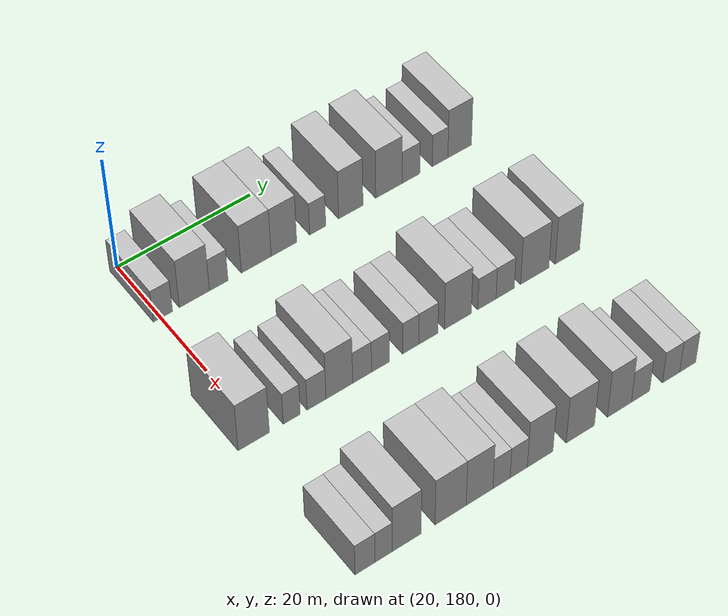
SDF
<sdf version="1.6">
 <world name="default">
  <model name="building_146">
   <static>1</static>
   <pose>25.0000 180.2762 0 0.000000 0.000000 0.000000</pose>
   <link name="link">
    <pose>0 0 3.00 0 0 0</pose>
    <collision name="collision"><geometry><box><size>10.0000 2.7897 6.0000</size></box></geometry></collision>
    <visual name="visual">
     <cast_shadows>0</cast_shadows>
     <geometry><box><size>10.0000 2.7897 6.0000</size></box></geometry>
     <material>
      <script>
       <uri>model://HANNAS_wall/materials/scripts</uri>
       <uri>model://HANNAS_wall/materials/textures</uri>
       <name>vrc/HANNAS_wall</name>
      </script>
     </material>
    </visual>
   </link>
  </model>
  <model name="building_147">
   <static>1</static>
   <pose>25.0000 184.8887 0 0.000000 0.000000 0.000000</pose>
   <link name="link">
    <pose>0 0 4.50 0 0 0</pose>
    <collision name="collision"><geometry><box><size>10.0000 4.4352 9.0000</size></box></geometry></collision>
    <visual name="visual">
     <cast_shadows>0</cast_shadows>
     <geometry><box><size>10.0000 4.4352 9.0000</size></box></geometry>
     <material>
      <script>
       <uri>model://HANNAS_wall/materials/scripts</uri>
       <uri>model://HANNAS_wall/materials/textures</uri>
       <name>vrc/HANNAS_wall</name>
      </script>
     </material>
    </visual>
   </link>
  </model>
  <model name="building_148">
   <static>1</static>
   <pose>25.0000 188.4868 0 0.000000 0.000000 0.000000</pose>
   <link name="link">
    <pose>0 0 3.00 0 0 0</pose>
    <collision name="collision"><geometry><box><size>10.0000 2.7611 6.0000</size></box></geometry></collision>
    <visual name="visual">
     <cast_shadows>0</cast_shadows>
     <geometry><box><size>10.0000 2.7611 6.0000</size></box></geometry>
     <material>
      <script>
       <uri>model://HANNAS_wall/materials/scripts</uri>
       <uri>model://HANNAS_wall/materials/textures</uri>
       <name>vrc/HANNAS_wall</name>
      </script>
     </material>
    </visual>
   </link>
  </model>
  <model name="building_149">
   <static>1</static>
   <pose>25.0000 194.1086 0 0.000000 0.000000 0.000000</pose>
   <link name="link">
    <pose>0 0 4.50 0 0 0</pose>
    <collision name="collision"><geometry><box><size>10.0000 4.4825 9.0000</size></box></geometry></collision>
    <visual name="visual">
     <cast_shadows>0</cast_shadows>
     <geometry><box><size>10.0000 4.4825 9.0000</size></box></geometry>
     <material>
      <script>
       <uri>model://HANNAS_wall/materials/scripts</uri>
       <uri>model://HANNAS_wall/materials/textures</uri>
       <name>vrc/HANNAS_wall</name>
      </script>
     </material>
    </visual>
   </link>
  </model>
  <model name="building_150">
   <static>1</static>
   <pose>25.0000 198.2959 0 0.000000 0.000000 0.000000</pose>
   <link name="link">
    <pose>0 0 4.50 0 0 0</pose>
    <collision name="collision"><geometry><box><size>10.0000 3.8920 9.0000</size></box></geometry></collision>
    <visual name="visual">
     <cast_shadows>0</cast_shadows>
     <geometry><box><size>10.0000 3.8920 9.0000</size></box></geometry>
     <material>
      <script>
       <uri>model://HANNAS_wall/materials/scripts</uri>
       <uri>model://HANNAS_wall/materials/textures</uri>
       <name>vrc/HANNAS_wall</name>
      </script>
     </material>
    </visual>
   </link>
  </model>
  <model name="building_151">
   <static>1</static>
   <pose>25.0000 203.4770 0 0.000000 0.000000 0.000000</pose>
   <link name="link">
    <pose>0 0 3.00 0 0 0</pose>
    <collision name="collision"><geometry><box><size>10.0000 2.4702 6.0000</size></box></geometry></collision>
    <visual name="visual">
     <cast_shadows>0</cast_shadows>
     <geometry><box><size>10.0000 2.4702 6.0000</size></box></geometry>
     <material>
      <script>
       <uri>model://HANNAS_wall/materials/scripts</uri>
       <uri>model://HANNAS_wall/materials/textures</uri>
       <name>vrc/HANNAS_wall</name>
      </script>
     </material>
    </visual>
   </link>
  </model>
  <model name="building_152">
   <static>1</static>
   <pose>25.0000 208.6117 0 0.000000 0.000000 0.000000</pose>
   <link name="link">
    <pose>0 0 4.50 0 0 0</pose>
    <collision name="collision"><geometry><box><size>10.0000 3.7992 9.0000</size></box></geometry></collision>
    <visual name="visual">
     <cast_shadows>0</cast_shadows>
     <geometry><box><size>10.0000 3.7992 9.0000</size></box></geometry>
     <material>
      <script>
       <uri>model://HANNAS_wall/materials/scripts</uri>
       <uri>model://HANNAS_wall/materials/textures</uri>
       <name>vrc/HANNAS_wall</name>
      </script>
     </material>
    </visual>
   </link>
  </model>
  <model name="building_153">
   <static>1</static>
   <pose>25.0000 214.5991 0 0.000000 0.000000 0.000000</pose>
   <link name="link">
    <pose>0 0 4.50 0 0 0</pose>
    <collision name="collision"><geometry><box><size>10.0000 4.1758 9.0000</size></box></geometry></collision>
    <visual name="visual">
     <cast_shadows>0</cast_shadows>
     <geometry><box><size>10.0000 4.1758 9.0000</size></box></geometry>
     <material>
      <script>
       <uri>model://HANNAS_wall/materials/scripts</uri>
       <uri>model://HANNAS_wall/materials/textures</uri>
       <name>vrc/HANNAS_wall</name>
      </script>
     </material>
    </visual>
   </link>
  </model>
  <model name="building_154">
   <static>1</static>
   <pose>25.0000 218.0930 0 0.000000 0.000000 0.000000</pose>
   <link name="link">
    <pose>0 0 3.00 0 0 0</pose>
    <collision name="collision"><geometry><box><size>10.0000 2.8120 6.0000</size></box></geometry></collision>
    <visual name="visual">
     <cast_shadows>0</cast_shadows>
     <geometry><box><size>10.0000 2.8120 6.0000</size></box></geometry>
     <material>
      <script>
       <uri>model://HANNAS_wall/materials/scripts</uri>
       <uri>model://HANNAS_wall/materials/textures</uri>
       <name>vrc/HANNAS_wall</name>
      </script>
     </material>
    </visual>
   </link>
  </model>
  <model name="building_155">
   <static>1</static>
   <pose>25.0000 222.7590 0 0.000000 0.000000 0.000000</pose>
   <link name="link">
    <pose>0 0 3.00 0 0 0</pose>
    <collision name="collision"><geometry><box><size>10.0000 2.5200 6.0000</size></box></geometry></collision>
    <visual name="visual">
     <cast_shadows>0</cast_shadows>
     <geometry><box><size>10.0000 2.5200 6.0000</size></box></geometry>
     <material>
      <script>
       <uri>model://HANNAS_wall/materials/scripts</uri>
       <uri>model://HANNAS_wall/materials/textures</uri>
       <name>vrc/HANNAS_wall</name>
      </script>
     </material>
    </visual>
   </link>
  </model>
  <model name="building_156">
   <static>1</static>
   <pose>25.0000 225.9309 0 0.000000 0.000000 0.000000</pose>
   <link name="link">
    <pose>0 0 4.50 0 0 0</pose>
    <collision name="collision"><geometry><box><size>10.0000 3.8239 9.0000</size></box></geometry></collision>
    <visual name="visual">
     <cast_shadows>0</cast_shadows>
     <geometry><box><size>10.0000 3.8239 9.0000</size></box></geometry>
     <material>
      <script>
       <uri>model://HANNAS_wall/materials/scripts</uri>
       <uri>model://HANNAS_wall/materials/textures</uri>
       <name>vrc/HANNAS_wall</name>
      </script>
     </material>
    </visual>
   </link>
  </model>
  <model name="building_328">
   <static>1</static>
   <pose>47.0000 178.7338 0 0.000000 0.000000 0.000000</pose>
   <link name="link">
    <pose>0 0 4.50 0 0 0</pose>
    <collision name="collision"><geometry><box><size>10.0000 4.4576 9.0000</size></box></geometry></collision>
    <visual name="visual">
     <cast_shadows>0</cast_shadows>
     <geometry><box><size>10.0000 4.4576 9.0000</size></box></geometry>
     <material>
      <script>
       <uri>model://HANNAS_wall/materials/scripts</uri>
       <uri>model://HANNAS_wall/materials/textures</uri>
       <name>vrc/HANNAS_wall</name>
      </script>
     </material>
    </visual>
   </link>
  </model>
  <model name="building_329">
   <static>1</static>
   <pose>47.0000 184.1841 0 0.000000 0.000000 0.000000</pose>
   <link name="link">
    <pose>0 0 3.00 0 0 0</pose>
    <collision name="collision"><geometry><box><size>10.0000 2.4431 6.0000</size></box></geometry></collision>
    <visual name="visual">
     <cast_shadows>0</cast_shadows>
     <geometry><box><size>10.0000 2.4431 6.0000</size></box></geometry>
     <material>
      <script>
       <uri>model://HANNAS_wall/materials/scripts</uri>
       <uri>model://HANNAS_wall/materials/textures</uri>
       <name>vrc/HANNAS_wall</name>
      </script>
     </material>
    </visual>
   </link>
  </model>
  <model name="building_330">
   <static>1</static>
   <pose>47.0000 187.7777 0 0.000000 0.000000 0.000000</pose>
   <link name="link">
    <pose>0 0 3.00 0 0 0</pose>
    <collision name="collision"><geometry><box><size>10.0000 2.7441 6.0000</size></box></geometry></collision>
    <visual name="visual">
     <cast_shadows>0</cast_shadows>
     <geometry><box><size>10.0000 2.7441 6.0000</size></box></geometry>
     <material>
      <script>
       <uri>model://HANNAS_wall/materials/scripts</uri>
       <uri>model://HANNAS_wall/materials/textures</uri>
       <name>vrc/HANNAS_wall</name>
      </script>
     </material>
    </visual>
   </link>
  </model>
  <model name="building_331">
   <static>1</static>
   <pose>47.0000 191.1143 0 0.000000 0.000000 0.000000</pose>
   <link name="link">
    <pose>0 0 4.50 0 0 0</pose>
    <collision name="collision"><geometry><box><size>10.0000 3.9290 9.0000</size></box></geometry></collision>
    <visual name="visual">
     <cast_shadows>0</cast_shadows>
     <geometry><box><size>10.0000 3.9290 9.0000</size></box></geometry>
     <material>
      <script>
       <uri>model://HANNAS_wall/materials/scripts</uri>
       <uri>model://HANNAS_wall/materials/textures</uri>
       <name>vrc/HANNAS_wall</name>
      </script>
     </material>
    </visual>
   </link>
  </model>
  <model name="building_332">
   <static>1</static>
   <pose>47.0000 194.4727 0 0.000000 0.000000 0.000000</pose>
   <link name="link">
    <pose>0 0 3.00 0 0 0</pose>
    <collision name="collision"><geometry><box><size>10.0000 2.7879 6.0000</size></box></geometry></collision>
    <visual name="visual">
     <cast_shadows>0</cast_shadows>
     <geometry><box><size>10.0000 2.7879 6.0000</size></box></geometry>
     <material>
      <script>
       <uri>model://HANNAS_wall/materials/scripts</uri>
       <uri>model://HANNAS_wall/materials/textures</uri>
       <name>vrc/HANNAS_wall</name>
      </script>
     </material>
    </visual>
   </link>
  </model>
  <model name="building_333">
   <static>1</static>
   <pose>47.0000 197.1919 0 0.000000 0.000000 0.000000</pose>
   <link name="link">
    <pose>0 0 3.00 0 0 0</pose>
    <collision name="collision"><geometry><box><size>10.0000 2.6504 6.0000</size></box></geometry></collision>
    <visual name="visual">
     <cast_shadows>0</cast_shadows>
     <geometry><box><size>10.0000 2.6504 6.0000</size></box></geometry>
     <material>
      <script>
       <uri>model://HANNAS_wall/materials/scripts</uri>
       <uri>model://HANNAS_wall/materials/textures</uri>
       <name>vrc/HANNAS_wall</name>
      </script>
     </material>
    </visual>
   </link>
  </model>
  <model name="building_334">
   <static>1</static>
   <pose>47.0000 201.7520 0 0.000000 0.000000 0.000000</pose>
   <link name="link">
    <pose>0 0 3.00 0 0 0</pose>
    <collision name="collision"><geometry><box><size>10.0000 2.4699 6.0000</size></box></geometry></collision>
    <visual name="visual">
     <cast_shadows>0</cast_shadows>
     <geometry><box><size>10.0000 2.4699 6.0000</size></box></geometry>
     <material>
      <script>
       <uri>model://HANNAS_wall/materials/scripts</uri>
       <uri>model://HANNAS_wall/materials/textures</uri>
       <name>vrc/HANNAS_wall</name>
      </script>
     </material>
    </visual>
   </link>
  </model>
  <model name="building_335">
   <static>1</static>
   <pose>47.0000 204.4269 0 0.000000 0.000000 0.000000</pose>
   <link name="link">
    <pose>0 0 3.00 0 0 0</pose>
    <collision name="collision"><geometry><box><size>10.0000 2.8798 6.0000</size></box></geometry></collision>
    <visual name="visual">
     <cast_shadows>0</cast_shadows>
     <geometry><box><size>10.0000 2.8798 6.0000</size></box></geometry>
     <material>
      <script>
       <uri>model://HANNAS_wall/materials/scripts</uri>
       <uri>model://HANNAS_wall/materials/textures</uri>
       <name>vrc/HANNAS_wall</name>
      </script>
     </material>
    </visual>
   </link>
  </model>
  <model name="building_336">
   <static>1</static>
   <pose>47.0000 208.9249 0 0.000000 0.000000 0.000000</pose>
   <link name="link">
    <pose>0 0 4.50 0 0 0</pose>
    <collision name="collision"><geometry><box><size>10.0000 4.1162 9.0000</size></box></geometry></collision>
    <visual name="visual">
     <cast_shadows>0</cast_shadows>
     <geometry><box><size>10.0000 4.1162 9.0000</size></box></geometry>
     <material>
      <script>
       <uri>model://HANNAS_wall/materials/scripts</uri>
       <uri>model://HANNAS_wall/materials/textures</uri>
       <name>vrc/HANNAS_wall</name>
      </script>
     </material>
    </visual>
   </link>
  </model>
  <model name="building_337">
   <static>1</static>
   <pose>47.0000 213.4071 0 0.000000 0.000000 0.000000</pose>
   <link name="link">
    <pose>0 0 3.00 0 0 0</pose>
    <collision name="collision"><geometry><box><size>10.0000 2.8483 6.0000</size></box></geometry></collision>
    <visual name="visual">
     <cast_shadows>0</cast_shadows>
     <geometry><box><size>10.0000 2.8483 6.0000</size></box></geometry>
     <material>
      <script>
       <uri>model://HANNAS_wall/materials/scripts</uri>
       <uri>model://HANNAS_wall/materials/textures</uri>
       <name>vrc/HANNAS_wall</name>
      </script>
     </material>
    </visual>
   </link>
  </model>
  <model name="building_338">
   <static>1</static>
   <pose>47.0000 216.2558 0 0.000000 0.000000 0.000000</pose>
   <link name="link">
    <pose>0 0 3.00 0 0 0</pose>
    <collision name="collision"><geometry><box><size>10.0000 2.8491 6.0000</size></box></geometry></collision>
    <visual name="visual">
     <cast_shadows>0</cast_shadows>
     <geometry><box><size>10.0000 2.8491 6.0000</size></box></geometry>
     <material>
      <script>
       <uri>model://HANNAS_wall/materials/scripts</uri>
       <uri>model://HANNAS_wall/materials/textures</uri>
       <name>vrc/HANNAS_wall</name>
      </script>
     </material>
    </visual>
   </link>
  </model>
  <model name="building_339">
   <static>1</static>
   <pose>47.0000 220.9137 0 0.000000 0.000000 0.000000</pose>
   <link name="link">
    <pose>0 0 4.50 0 0 0</pose>
    <collision name="collision"><geometry><box><size>10.0000 4.4667 9.0000</size></box></geometry></collision>
    <visual name="visual">
     <cast_shadows>0</cast_shadows>
     <geometry><box><size>10.0000 4.4667 9.0000</size></box></geometry>
     <material>
      <script>
       <uri>model://HANNAS_wall/materials/scripts</uri>
       <uri>model://HANNAS_wall/materials/textures</uri>
       <name>vrc/HANNAS_wall</name>
      </script>
     </material>
    </visual>
   </link>
  </model>
  <model name="building_340">
   <static>1</static>
   <pose>47.0000 226.0977 0 0.000000 0.000000 0.000000</pose>
   <link name="link">
    <pose>0 0 4.50 0 0 0</pose>
    <collision name="collision"><geometry><box><size>10.0000 3.9013 9.0000</size></box></geometry></collision>
    <visual name="visual">
     <cast_shadows>0</cast_shadows>
     <geometry><box><size>10.0000 3.9013 9.0000</size></box></geometry>
     <material>
      <script>
       <uri>model://HANNAS_wall/materials/scripts</uri>
       <uri>model://HANNAS_wall/materials/textures</uri>
       <name>vrc/HANNAS_wall</name>
      </script>
     </material>
    </visual>
   </link>
  </model>
  <model name="building_523">
   <static>1</static>
   <pose>69.0000 178.9867 0 0.000000 0.000000 0.000000</pose>
   <link name="link">
    <pose>0 0 3.00 0 0 0</pose>
    <collision name="collision"><geometry><box><size>10.0000 2.7928 6.0000</size></box></geometry></collision>
    <visual name="visual">
     <cast_shadows>0</cast_shadows>
     <geometry><box><size>10.0000 2.7928 6.0000</size></box></geometry>
     <material>
      <script>
       <uri>model://HANNAS_wall/materials/scripts</uri>
       <uri>model://HANNAS_wall/materials/textures</uri>
       <name>vrc/HANNAS_wall</name>
      </script>
     </material>
    </visual>
   </link>
  </model>
  <model name="building_524">
   <static>1</static>
   <pose>69.0000 181.6063 0 0.000000 0.000000 0.000000</pose>
   <link name="link">
    <pose>0 0 3.00 0 0 0</pose>
    <collision name="collision"><geometry><box><size>10.0000 2.4462 6.0000</size></box></geometry></collision>
    <visual name="visual">
     <cast_shadows>0</cast_shadows>
     <geometry><box><size>10.0000 2.4462 6.0000</size></box></geometry>
     <material>
      <script>
       <uri>model://HANNAS_wall/materials/scripts</uri>
       <uri>model://HANNAS_wall/materials/textures</uri>
       <name>vrc/HANNAS_wall</name>
      </script>
     </material>
    </visual>
   </link>
  </model>
  <model name="building_525">
   <static>1</static>
   <pose>69.0000 184.8749 0 0.000000 0.000000 0.000000</pose>
   <link name="link">
    <pose>0 0 4.50 0 0 0</pose>
    <collision name="collision"><geometry><box><size>10.0000 4.0911 9.0000</size></box></geometry></collision>
    <visual name="visual">
     <cast_shadows>0</cast_shadows>
     <geometry><box><size>10.0000 4.0911 9.0000</size></box></geometry>
     <material>
      <script>
       <uri>model://HANNAS_wall/materials/scripts</uri>
       <uri>model://HANNAS_wall/materials/textures</uri>
       <name>vrc/HANNAS_wall</name>
      </script>
     </material>
    </visual>
   </link>
  </model>
  <model name="building_526">
   <static>1</static>
   <pose>69.0000 191.1650 0 0.000000 0.000000 0.000000</pose>
   <link name="link">
    <pose>0 0 4.50 0 0 0</pose>
    <collision name="collision"><geometry><box><size>10.0000 4.4891 9.0000</size></box></geometry></collision>
    <visual name="visual">
     <cast_shadows>0</cast_shadows>
     <geometry><box><size>10.0000 4.4891 9.0000</size></box></geometry>
     <material>
      <script>
       <uri>model://HANNAS_wall/materials/scripts</uri>
       <uri>model://HANNAS_wall/materials/textures</uri>
       <name>vrc/HANNAS_wall</name>
      </script>
     </material>
    </visual>
   </link>
  </model>
  <model name="building_527">
   <static>1</static>
   <pose>69.0000 195.3666 0 0.000000 0.000000 0.000000</pose>
   <link name="link">
    <pose>0 0 4.50 0 0 0</pose>
    <collision name="collision"><geometry><box><size>10.0000 3.9140 9.0000</size></box></geometry></collision>
    <visual name="visual">
     <cast_shadows>0</cast_shadows>
     <geometry><box><size>10.0000 3.9140 9.0000</size></box></geometry>
     <material>
      <script>
       <uri>model://HANNAS_wall/materials/scripts</uri>
       <uri>model://HANNAS_wall/materials/textures</uri>
       <name>vrc/HANNAS_wall</name>
      </script>
     </material>
    </visual>
   </link>
  </model>
  <model name="building_528">
   <static>1</static>
   <pose>69.0000 198.5885 0 0.000000 0.000000 0.000000</pose>
   <link name="link">
    <pose>0 0 3.00 0 0 0</pose>
    <collision name="collision"><geometry><box><size>10.0000 2.5299 6.0000</size></box></geometry></collision>
    <visual name="visual">
     <cast_shadows>0</cast_shadows>
     <geometry><box><size>10.0000 2.5299 6.0000</size></box></geometry>
     <material>
      <script>
       <uri>model://HANNAS_wall/materials/scripts</uri>
       <uri>model://HANNAS_wall/materials/textures</uri>
       <name>vrc/HANNAS_wall</name>
      </script>
     </material>
    </visual>
   </link>
  </model>
  <model name="building_529">
   <static>1</static>
   <pose>69.0000 201.1320 0 0.000000 0.000000 0.000000</pose>
   <link name="link">
    <pose>0 0 3.00 0 0 0</pose>
    <collision name="collision"><geometry><box><size>10.0000 2.5570 6.0000</size></box></geometry></collision>
    <visual name="visual">
     <cast_shadows>0</cast_shadows>
     <geometry><box><size>10.0000 2.5570 6.0000</size></box></geometry>
     <material>
      <script>
       <uri>model://HANNAS_wall/materials/scripts</uri>
       <uri>model://HANNAS_wall/materials/textures</uri>
       <name>vrc/HANNAS_wall</name>
      </script>
     </material>
    </visual>
   </link>
  </model>
  <model name="building_530">
   <static>1</static>
   <pose>69.0000 204.3224 0 0.000000 0.000000 0.000000</pose>
   <link name="link">
    <pose>0 0 4.50 0 0 0</pose>
    <collision name="collision"><geometry><box><size>10.0000 3.8239 9.0000</size></box></geometry></collision>
    <visual name="visual">
     <cast_shadows>0</cast_shadows>
     <geometry><box><size>10.0000 3.8239 9.0000</size></box></geometry>
     <material>
      <script>
       <uri>model://HANNAS_wall/materials/scripts</uri>
       <uri>model://HANNAS_wall/materials/textures</uri>
       <name>vrc/HANNAS_wall</name>
      </script>
     </material>
    </visual>
   </link>
  </model>
  <model name="building_531">
   <static>1</static>
   <pose>69.0000 210.3717 0 0.000000 0.000000 0.000000</pose>
   <link name="link">
    <pose>0 0 4.50 0 0 0</pose>
    <collision name="collision"><geometry><box><size>10.0000 4.2746 9.0000</size></box></geometry></collision>
    <visual name="visual">
     <cast_shadows>0</cast_shadows>
     <geometry><box><size>10.0000 4.2746 9.0000</size></box></geometry>
     <material>
      <script>
       <uri>model://HANNAS_wall/materials/scripts</uri>
       <uri>model://HANNAS_wall/materials/textures</uri>
       <name>vrc/HANNAS_wall</name>
      </script>
     </material>
    </visual>
   </link>
  </model>
  <model name="building_532">
   <static>1</static>
   <pose>69.0000 216.3532 0 0.000000 0.000000 0.000000</pose>
   <link name="link">
    <pose>0 0 4.50 0 0 0</pose>
    <collision name="collision"><geometry><box><size>10.0000 3.6883 9.0000</size></box></geometry></collision>
    <visual name="visual">
     <cast_shadows>0</cast_shadows>
     <geometry><box><size>10.0000 3.6883 9.0000</size></box></geometry>
     <material>
      <script>
       <uri>model://HANNAS_wall/materials/scripts</uri>
       <uri>model://HANNAS_wall/materials/textures</uri>
       <name>vrc/HANNAS_wall</name>
      </script>
     </material>
    </visual>
   </link>
  </model>
  <model name="building_533">
   <static>1</static>
   <pose>69.0000 219.6190 0 0.000000 0.000000 0.000000</pose>
   <link name="link">
    <pose>0 0 3.00 0 0 0</pose>
    <collision name="collision"><geometry><box><size>10.0000 2.8432 6.0000</size></box></geometry></collision>
    <visual name="visual">
     <cast_shadows>0</cast_shadows>
     <geometry><box><size>10.0000 2.8432 6.0000</size></box></geometry>
     <material>
      <script>
       <uri>model://HANNAS_wall/materials/scripts</uri>
       <uri>model://HANNAS_wall/materials/textures</uri>
       <name>vrc/HANNAS_wall</name>
      </script>
     </material>
    </visual>
   </link>
  </model>
  <model name="building_534">
   <static>1</static>
   <pose>69.0000 224.3897 0 0.000000 0.000000 0.000000</pose>
   <link name="link">
    <pose>0 0 3.00 0 0 0</pose>
    <collision name="collision"><geometry><box><size>10.0000 2.6981 6.0000</size></box></geometry></collision>
    <visual name="visual">
     <cast_shadows>0</cast_shadows>
     <geometry><box><size>10.0000 2.6981 6.0000</size></box></geometry>
     <material>
      <script>
       <uri>model://HANNAS_wall/materials/scripts</uri>
       <uri>model://HANNAS_wall/materials/textures</uri>
       <name>vrc/HANNAS_wall</name>
      </script>
     </material>
    </visual>
   </link>
  </model>
  <model name="building_535">
   <static>1</static>
   <pose>69.0000 227.0105 0 0.000000 0.000000 0.000000</pose>
   <link name="link">
    <pose>0 0 3.00 0 0 0</pose>
    <collision name="collision"><geometry><box><size>10.0000 2.5435 6.0000</size></box></geometry></collision>
    <visual name="visual">
     <cast_shadows>0</cast_shadows>
     <geometry><box><size>10.0000 2.5435 6.0000</size></box></geometry>
     <material>
      <script>
       <uri>model://HANNAS_wall/materials/scripts</uri>
       <uri>model://HANNAS_wall/materials/textures</uri>
       <name>vrc/HANNAS_wall</name>
      </script>
     </material>
    </visual>
   </link>
  </model>
 </world>
</sdf>
